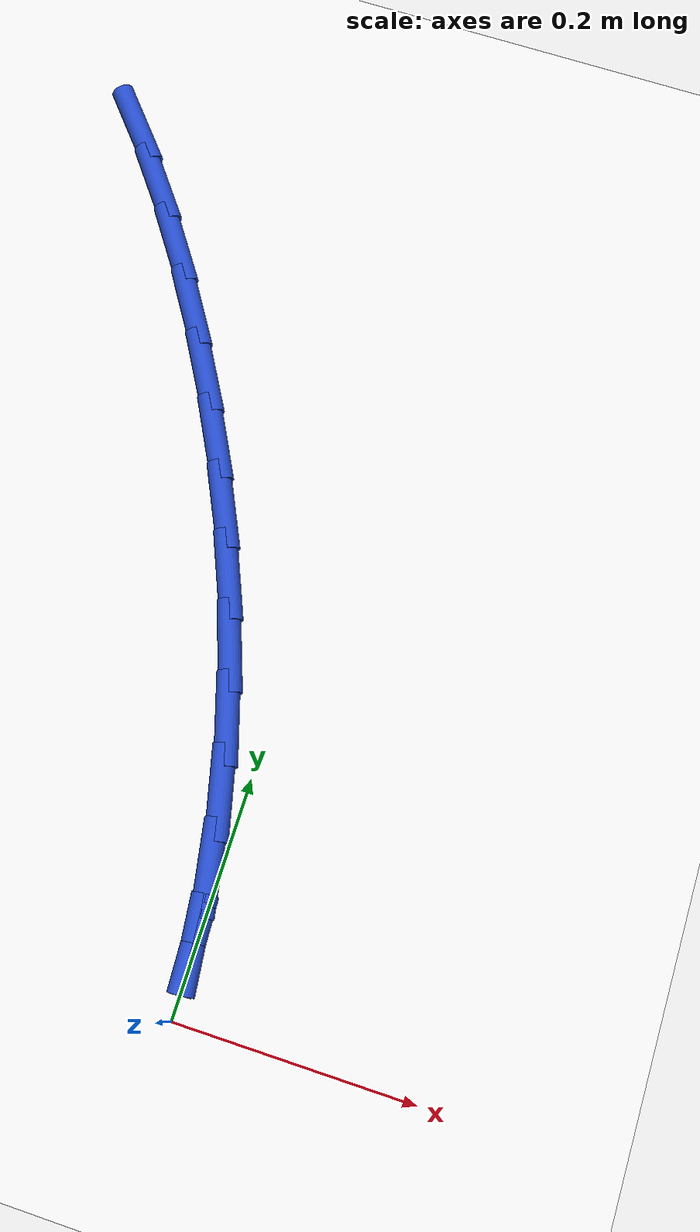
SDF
<sdf version="1.6">
 <world name="default">
  <model name="ground_plane">
   <static>1</static>
   <link name="link">
    <collision name="collision">
     <geometry><plane><normal>0 0 1</normal><size>100 100</size></plane></geometry>
     <surface><friction><ode><mu>100</mu><mu2>50</mu2></ode></friction></surface>
    </collision>
    <visual name="visual">
     <cast_shadows>0</cast_shadows>
     <geometry><plane><normal>0 0 1</normal><size>100 100</size></plane></geometry>
     <material>
      <script><uri>file://media/materials/scripts/gazebo.material</uri><name>Gazebo/WhiteGlow</name></script>
     </material>
    </visual>
   </link>
  </model>
  <model name="line">
   <link name="link_1">
    <pose>-0.002863955050590374 0.06072926733829402 0.01 0 1.57 -1.4582003092684177</pose>
    <collision name="collision">
     <geometry><cylinder><radius>0.01</radius><length>0.08</length></cylinder></geometry>
    </collision>
    <visual name="visual">
     <material>
      <script><name>Gazebo/Blue</name><uri>file://media/materials/scripts/gazebo.material</uri></script>
     </material>
     <geometry><cylinder><radius>0.01</radius><length>0.08</length></cylinder></geometry>
    </visual>
   </link>
   <link name="link_2">
    <pose>-0.009670283621162687 0.12092270175598158 0.01 0 1.57 -1.395772341337712</pose>
    <collision name="collision">
     <geometry><cylinder><radius>0.01</radius><length>0.08</length></cylinder></geometry>
    </collision>
    <visual name="visual">
     <material>
      <script><name>Gazebo/Blue</name><uri>file://media/materials/scripts/gazebo.material</uri></script>
     </material>
     <geometry><cylinder><radius>0.01</radius><length>0.08</length></cylinder></geometry>
    </visual>
   </link>
   <link name="link_3">
    <pose>-0.020216838627830743 0.18056391116106013 0.01 0 1.57 -1.3367370692062972</pose>
    <collision name="collision">
     <geometry><cylinder><radius>0.01</radius><length>0.08</length></cylinder></geometry>
    </collision>
    <visual name="visual">
     <material>
      <script><name>Gazebo/Blue</name><uri>file://media/materials/scripts/gazebo.material</uri></script>
     </material>
     <geometry><cylinder><radius>0.01</radius><length>0.08</length></cylinder></geometry>
    </visual>
   </link>
   <link name="link_4">
    <pose>-0.03430147298670846 0.23963650346152726 0.01 0 1.57 -1.281312546536655</pose>
    <collision name="collision">
     <geometry><cylinder><radius>0.01</radius><length>0.08</length></cylinder></geometry>
    </collision>
    <visual name="visual">
     <material>
      <script><name>Gazebo/Blue</name><uri>file://media/materials/scripts/gazebo.material</uri></script>
     </material>
     <geometry><cylinder><radius>0.01</radius><length>0.08</length></cylinder></geometry>
    </visual>
   </link>
   <link name="link_5">
    <pose>-0.051722039613909684 0.2981240865653806 0.01 0 1.57 -1.2296011440695884</pose>
    <collision name="collision">
     <geometry><cylinder><radius>0.01</radius><length>0.08</length></cylinder></geometry>
    </collision>
    <visual name="visual">
     <material>
      <script><name>Gazebo/Blue</name><uri>file://media/materials/scripts/gazebo.material</uri></script>
     </material>
     <geometry><cylinder><radius>0.01</radius><length>0.08</length></cylinder></geometry>
    </visual>
   </link>
   <link name="link_6">
    <pose>-0.07227639142554824 0.3560102683806172 0.01 0 1.57 -1.1816101441174316</pose>
    <collision name="collision">
     <geometry><cylinder><radius>0.01</radius><length>0.08</length></cylinder></geometry>
    </collision>
    <visual name="visual">
     <material>
      <script><name>Gazebo/Blue</name><uri>file://media/materials/scripts/gazebo.material</uri></script>
     </material>
     <geometry><cylinder><radius>0.01</radius><length>0.08</length></cylinder></geometry>
    </visual>
   </link>
   <link name="link_7">
    <pose>-0.09576238133773798 0.41327865681523485 0.01 0 1.57 -1.1372738427048563</pose>
    <collision name="collision">
     <geometry><cylinder><radius>0.01</radius><length>0.08</length></cylinder></geometry>
    </collision>
    <visual name="visual">
     <material>
      <script><name>Gazebo/Blue</name><uri>file://media/materials/scripts/gazebo.material</uri></script>
     </material>
     <geometry><cylinder><radius>0.01</radius><length>0.08</length></cylinder></geometry>
    </visual>
   </link>
   <link name="link_8">
    <pose>-0.12197786226659288 0.46991285977723124 0.01 0 1.57 -1.0964745192882905</pose>
    <collision name="collision">
     <geometry><cylinder><radius>0.01</radius><length>0.08</length></cylinder></geometry>
    </collision>
    <visual name="visual">
     <material>
      <script><name>Gazebo/Blue</name><uri>file://media/materials/scripts/gazebo.material</uri></script>
     </material>
     <geometry><cylinder><radius>0.01</radius><length>0.08</length></cylinder></geometry>
    </visual>
   </link>
   <link name="link_9">
    <pose>-0.15072068712822667 0.5258964851746034 0.01 0 1.57 -1.0586597168664338</pose>
    <collision name="collision">
     <geometry><cylinder><radius>0.01</radius><length>0.08</length></cylinder></geometry>
    </collision>
    <visual name="visual">
     <material>
      <script><name>Gazebo/Blue</name><uri>file://media/materials/scripts/gazebo.material</uri></script>
     </material>
     <geometry><cylinder><radius>0.01</radius><length>0.08</length></cylinder></geometry>
    </visual>
   </link>
   <link name="link_10">
    <pose>-0.18180136727984825 0.5811837387012662 0.01 0 1.57 -1.0198811755728747</pose>
    <collision name="collision">
     <geometry><cylinder><radius>0.01</radius><length>0.08</length></cylinder></geometry>
    </collision>
    <visual name="visual">
     <material>
      <script><name>Gazebo/Blue</name><uri>file://media/materials/scripts/gazebo.material</uri></script>
     </material>
     <geometry><cylinder><radius>0.01</radius><length>0.08</length></cylinder></geometry>
    </visual>
   </link>
   <link name="link_11">
    <pose>-0.215146421082359 0.6354593724326241 0.01 0 1.57 -0.9776258743470932</pose>
    <collision name="collision">
     <geometry><cylinder><radius>0.01</radius><length>0.08</length></cylinder></geometry>
    </collision>
    <visual name="visual">
     <material>
      <script><name>Gazebo/Blue</name><uri>file://media/materials/scripts/gazebo.material</uri></script>
     </material>
     <geometry><cylinder><radius>0.01</radius><length>0.08</length></cylinder></geometry>
    </visual>
   </link>
   <link name="link_12">
    <pose>-0.2507446636610773 0.6882634395202324 0.01 0 1.57 -0.931238741626313</pose>
    <collision name="collision">
     <geometry><cylinder><radius>0.01</radius><length>0.08</length></cylinder></geometry>
    </collision>
    <visual name="visual">
     <material>
      <script><name>Gazebo/Blue</name><uri>file://media/materials/scripts/gazebo.material</uri></script>
     </material>
     <geometry><cylinder><radius>0.01</radius><length>0.08</length></cylinder></geometry>
    </visual>
   </link>
   <link name="link_13">
    <pose>-0.2885855066835128 0.7391346075057504 0.01 0 1.57 -0.8800227054386329</pose>
    <collision name="collision">
     <geometry><cylinder><radius>0.01</radius><length>0.08</length></cylinder></geometry>
    </collision>
    <visual name="visual">
     <material>
      <script><name>Gazebo/Blue</name><uri>file://media/materials/scripts/gazebo.material</uri></script>
     </material>
     <geometry><cylinder><radius>0.01</radius><length>0.08</length></cylinder></geometry>
    </visual>
   </link>
   <link name="link_111">
    <pose>-0.0029121081433278982 0.06067320464771213 0.01 0 1.57 -1.5228365220862736</pose>
    <collision name="collision">
     <geometry><cylinder><radius>0.01</radius><length>0.08</length></cylinder></geometry>
    </collision>
    <visual name="visual">
     <material>
      <script><name>Gazebo/Blue</name><uri>file://media/materials/scripts/gazebo.material</uri></script>
     </material>
     <geometry><cylinder><radius>0.01</radius><length>0.08</length></cylinder></geometry>
    </visual>
   </link>
  </model>
 </world>
</sdf>
